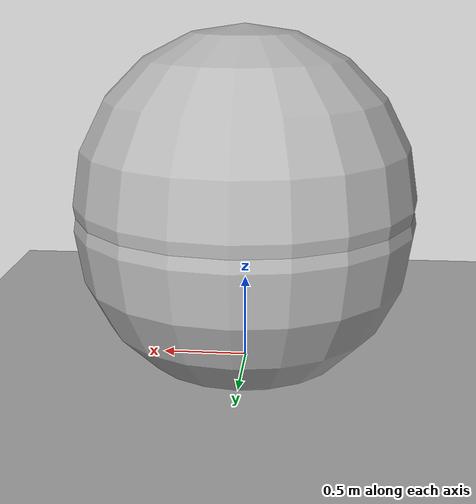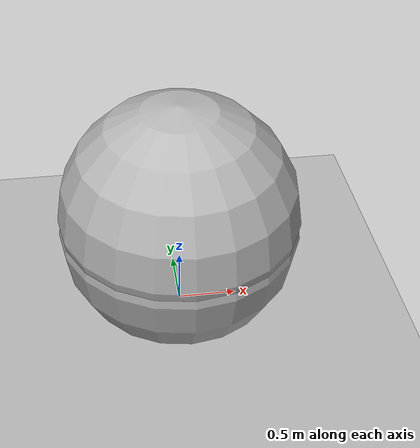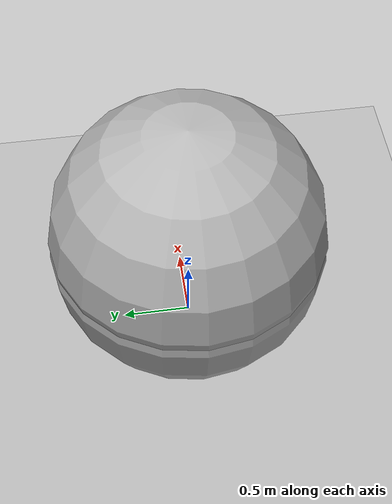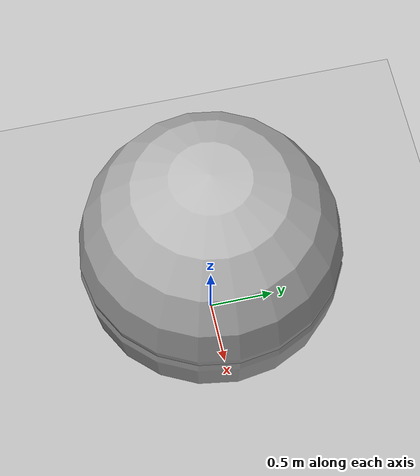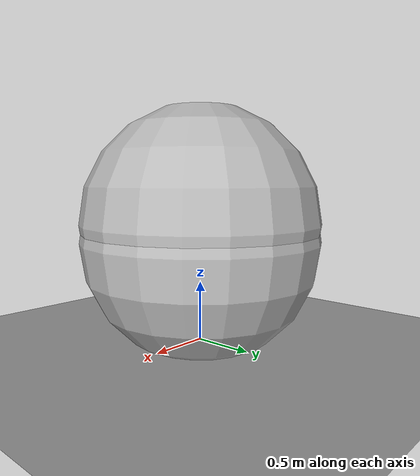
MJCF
<mujoco model="spring_scale">
    <compiler angle="radian" />
    <option gravity="0 0 -9.81" />

    <worldbody>

        <geom name="ground" type="plane" pos="0 0 0" size="2 2 0.1" rgba="0.7 0.7 0.7 1" friction="1 1 1" />

        <body name="object_1" pos="0 0 1">
            <geom type="sphere" size="0.05" rgba="0.7 0.7 0.7 1" />
            <site name="anchor_site" pos="0 0 0" />

            <body name="object_2" pos="0 0 -0.3">
                <joint name="slider_joint" type="slide" axis="0 0 1" damping="1" />
                <geom type="cylinder" size="0.05 0.02" rgba="0.7 0.7 0.7 1" />
                <site name="slider_site" pos="0 0 0" />
            </body>
        </body>

        <body name="Known Mass" pos="0.0 0.0 1.0"><geom type="sphere" size="1.0" rgba="0.7 0.7 0.7 1" /></body><body name="Test Mass" pos="0.0 0.0 0.85"><geom type="sphere" size="1.0" rgba="0.7 0.7 0.7 1" /></body></worldbody>

    <tendon>

        <spatial name="spring1" range="0.3 0.7" stiffness="50" damping="2">
            <site site="anchor_site" />
            <site site="slider_site" />
        </spatial>
    </tendon>
<joint name="joint_object_2_object_3" type="revolute" body1="object_2" body2="object_3" /><joint name="joint_object_2_object_1" type="revolute" body1="object_2" body2="object_1" /></mujoco>
